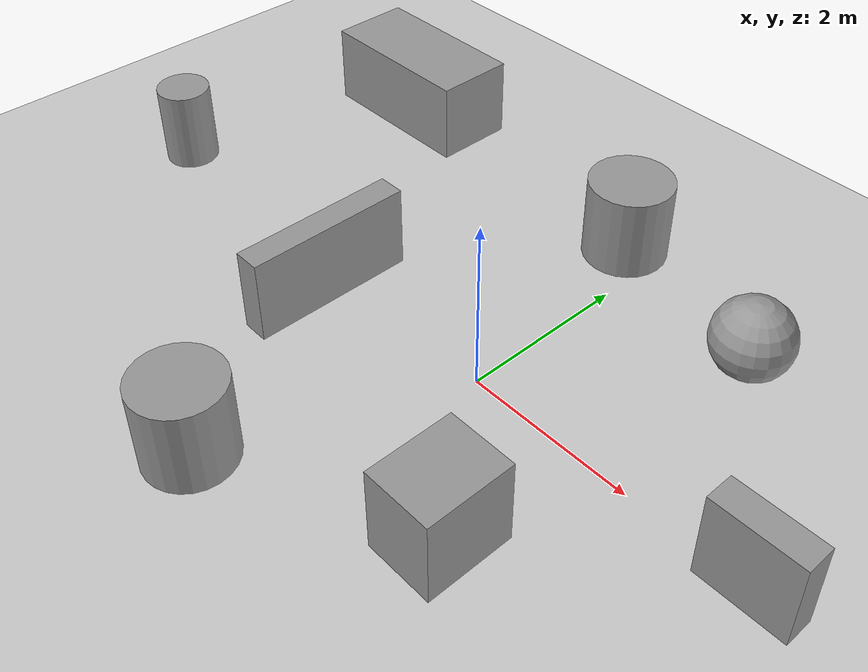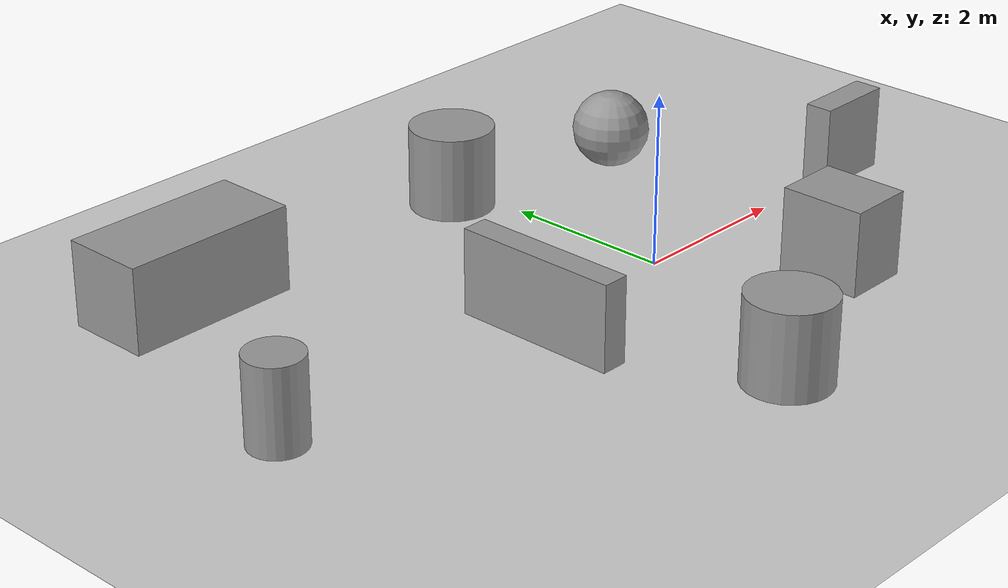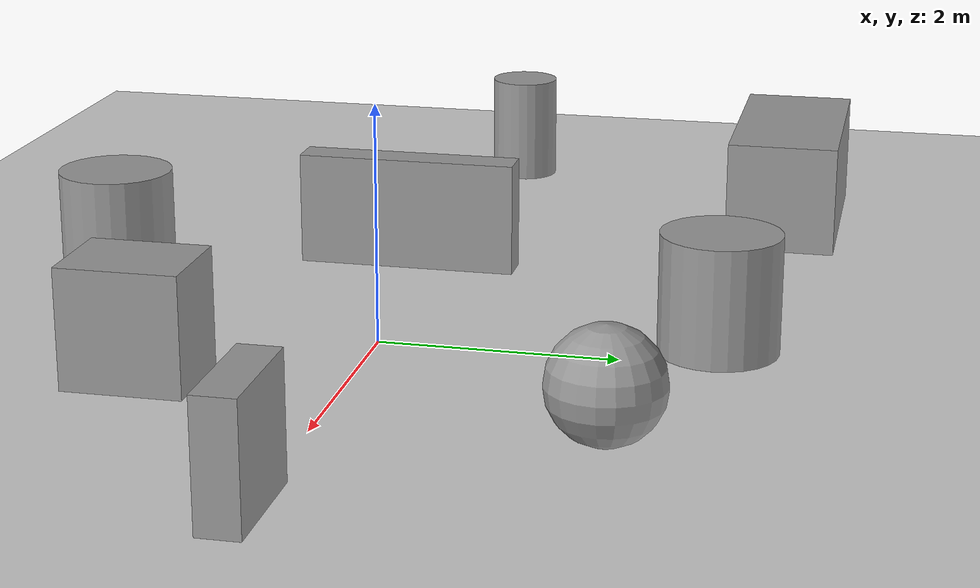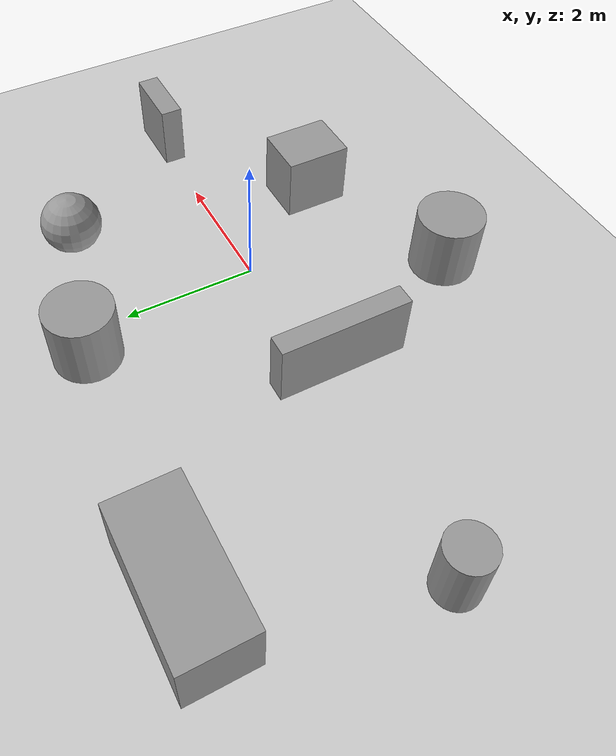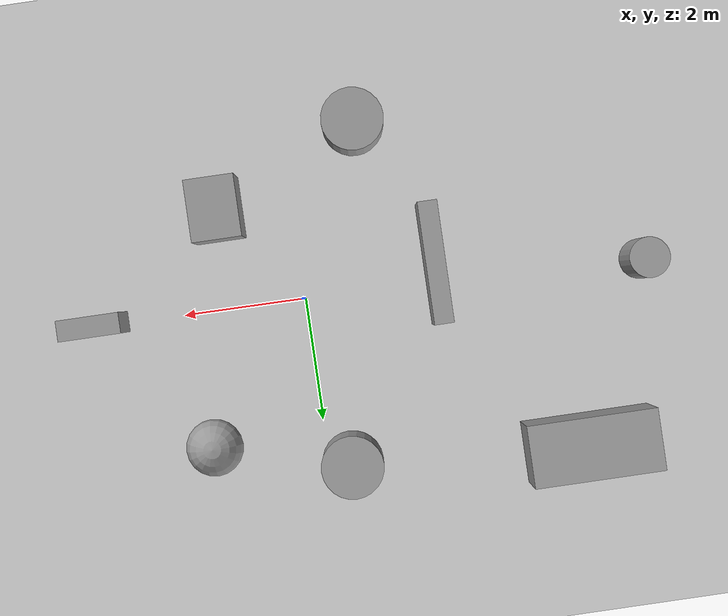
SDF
<sdf version="1.7">
 <world name="default">
  <light name="sun" type="directional">
   <pose>0 0 10 0 -0 0</pose>
   <diffuse>0.8 0.8 0.8 1</diffuse>
   <specular>0.2 0.2 0.2 1</specular>
   <attenuation>
    <range>1000</range>
    <constant>0.9</constant>
    <linear>0.01</linear>
    <quadratic>0.001</quadratic>
   </attenuation>
   <direction>-0.5 0.1 -0.9</direction>
   <spot><inner_angle>0</inner_angle><outer_angle>0</outer_angle><falloff>0</falloff></spot>
  </light>
  <model name="ground_plane">
   <static>1</static>
   <link name="link">
    <collision name="collision">
     <geometry><plane><normal>0 0 1</normal><size>100 100</size></plane></geometry>
     <surface><friction><ode><mu>100</mu><mu2>50</mu2></ode></friction></surface>
    </collision>
    <visual name="visual">
     <cast_shadows>0</cast_shadows>
     <geometry><plane><normal>0 0 1</normal><size>100 100</size></plane></geometry>
     <material>
      <script><uri>file://media/materials/scripts/gazebo.material</uri><name>Gazebo/Grey</name></script>
     </material>
    </visual>
   </link>
  </model>
  <gravity>0 0 -9.8</gravity>
  <magnetic_field>6e-06 2.3e-05 -4.2e-05</magnetic_field>
  <atmosphere type="adiabatic"/>
  <physics type="ode">
   <max_step_size>0.001</max_step_size>
   <real_time_factor>1</real_time_factor>
   <real_time_update_rate>1000</real_time_update_rate>
  </physics>
  <scene><ambient>0.4 0.4 0.4 1</ambient><background>0.7 0.7 0.7 1</background><shadows>1</shadows></scene>
  <audio><device>default</device></audio>
  <spherical_coordinates>
   <surface_model>EARTH_WGS84</surface_model>
   <latitude_deg>0</latitude_deg>
   <longitude_deg>0</longitude_deg>
   <elevation>0</elevation>
   <heading_deg>0</heading_deg>
  </spherical_coordinates>
  <model name="unit_cylinder">
   <pose>-1.16234 -2.69606 0.499997 3e-06 -4e-06 0</pose>
   <link name="link">
    <inertial>
     <mass>1</mass>
     <inertia><ixx>0.145833</ixx><ixy>0</ixy><ixz>0</ixz><iyy>0.145833</iyy><iyz>0</iyz><izz>0.125</izz></inertia>
    </inertial>
    <collision name="collision">
     <geometry><cylinder><radius>0.5</radius><length>1</length></cylinder></geometry>
    </collision>
    <visual name="visual">
     <geometry><cylinder><radius>0.5</radius><length>1</length></cylinder></geometry>
     <material>
      <script><name>Gazebo/Grey</name><uri>file://media/materials/scripts/gazebo.material</uri></script>
     </material>
    </visual>
   </link>
  </model>
  <model name="unit_box">
   <pose>1.21961 -1.61892 0.5 0 -0 -3.5e-05</pose>
   <link name="link">
    <inertial>
     <mass>1</mass>
     <inertia>
      <ixx>0.166667</ixx>
      <ixy>0</ixy>
      <ixz>0</ixz>
      <iyy>0.166667</iyy>
      <iyz>0</iyz>
      <izz>0.166667</izz>
     </inertia>
    </inertial>
    <collision name="collision"><geometry><box><size>0.801618 1 1</size></box></geometry></collision>
    <visual name="visual">
     <geometry><box><size>0.801618 1 1</size></box></geometry>
     <material>
      <script><name>Gazebo/Grey</name><uri>file://media/materials/scripts/gazebo.material</uri></script>
     </material>
    </visual>
   </link>
  </model>
  <model name="unit_sphere">
   <pose>1.77133 2.16951 0.461228 0 -0 0</pose>
   <link name="link">
    <inertial>
     <mass>1</mass>
     <inertia><ixx>0.1</ixx><ixy>0</ixy><ixz>0</ixz><iyy>0.1</iyy><iyz>0</iyz><izz>0.1</izz></inertia>
    </inertial>
    <collision name="collision"><geometry><sphere><radius>0.461228</radius></sphere></geometry></collision>
    <visual name="visual">
     <geometry><sphere><radius>0.461228</radius></sphere></geometry>
     <material>
      <script><name>Gazebo/Grey</name><uri>file://media/materials/scripts/gazebo.material</uri></script>
     </material>
    </visual>
   </link>
  </model>
  <model name="unit_box_0">
   <pose>-2.14554 -0.270175 0.499988 -1.3e-05 -0 5e-05</pose>
   <link name="link">
    <inertial>
     <mass>1</mass>
     <inertia>
      <ixx>0.166667</ixx>
      <ixy>0</ixy>
      <ixz>0</ixz>
      <iyy>0.166667</iyy>
      <iyz>0</iyz>
      <izz>0.166667</izz>
     </inertia>
    </inertial>
    <collision name="collision"><geometry><box><size>0.315224 1.96024 1</size></box></geometry></collision>
    <visual name="visual">
     <geometry><box><size>0.315224 1.96024 1</size></box></geometry>
     <material>
      <script><name>Gazebo/Grey</name><uri>file://media/materials/scripts/gazebo.material</uri></script>
     </material>
    </visual>
   </link>
  </model>
  <model name="unit_box_1">
   <pose>3.42366 -0.041073 0.499999 -2e-06 -1e-06 0.000691</pose>
   <link name="link">
    <inertial>
     <mass>1</mass>
     <inertia>
      <ixx>0.166667</ixx>
      <ixy>0</ixy>
      <ixz>0</ixz>
      <iyy>0.166667</iyy>
      <iyz>0</iyz>
      <izz>0.166667</izz>
     </inertia>
    </inertial>
    <collision name="collision"><geometry><box><size>1 0.335659 1</size></box></geometry></collision>
    <visual name="visual">
     <geometry><box><size>1 0.335659 1</size></box></geometry>
     <material>
      <script><name>Gazebo/Grey</name><uri>file://media/materials/scripts/gazebo.material</uri></script>
     </material>
    </visual>
   </link>
  </model>
  <model name="unit_cylinder_0">
   <pose>-5.49467 0.135274 0.499997 1e-06 1e-06 0</pose>
   <link name="link">
    <inertial>
     <mass>1</mass>
     <inertia><ixx>0.145833</ixx><ixy>0</ixy><ixz>0</ixz><iyy>0.145833</iyy><iyz>0</iyz><izz>0.125</izz></inertia>
    </inertial>
    <collision name="collision">
     <geometry><cylinder><radius>0.32535</radius><length>1</length></cylinder></geometry>
    </collision>
    <visual name="visual">
     <geometry><cylinder><radius>0.32535</radius><length>1</length></cylinder></geometry>
     <material>
      <script><name>Gazebo/Grey</name><uri>file://media/materials/scripts/gazebo.material</uri></script>
     </material>
    </visual>
   </link>
  </model>
  <model name="unit_cylinder_1">
   <pose>-0.388379 2.74696 0.499992 -3e-06 4e-06 0</pose>
   <link name="link">
    <inertial>
     <mass>1</mass>
     <inertia><ixx>0.145833</ixx><ixy>0</ixy><ixz>0</ixz><iyy>0.145833</iyy><iyz>0</iyz><izz>0.125</izz></inertia>
    </inertial>
    <collision name="collision">
     <geometry><cylinder><radius>0.5</radius><length>1</length></cylinder></geometry>
    </collision>
    <visual name="visual">
     <geometry><cylinder><radius>0.5</radius><length>1</length></cylinder></geometry>
     <material>
      <script><name>Gazebo/Grey</name><uri>file://media/materials/scripts/gazebo.material</uri></script>
     </material>
    </visual>
   </link>
  </model>
  <model name="unit_box_2">
   <pose>-4.23552 2.99588 0.5 0 -0 1.4e-05</pose>
   <link name="link">
    <inertial>
     <mass>1</mass>
     <inertia>
      <ixx>0.166667</ixx>
      <ixy>0</ixy>
      <ixz>0</ixz>
      <iyy>0.166667</iyy>
      <iyz>0</iyz>
      <izz>0.166667</izz>
     </inertia>
    </inertial>
    <collision name="collision"><geometry><box><size>2.0915 1 1</size></box></geometry></collision>
    <visual name="visual">
     <geometry><box><size>2.0915 1 1</size></box></geometry>
     <material>
      <script><name>Gazebo/Grey</name><uri>file://media/materials/scripts/gazebo.material</uri></script>
     </material>
    </visual>
   </link>
  </model>
 </world>
</sdf>
